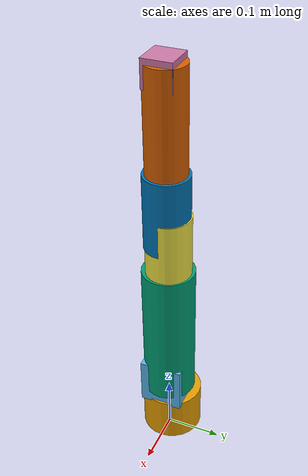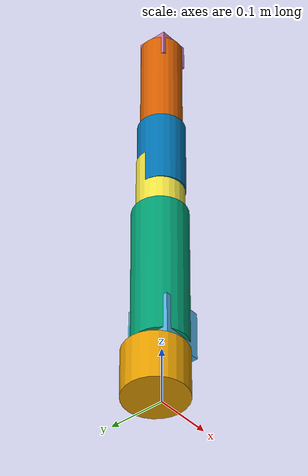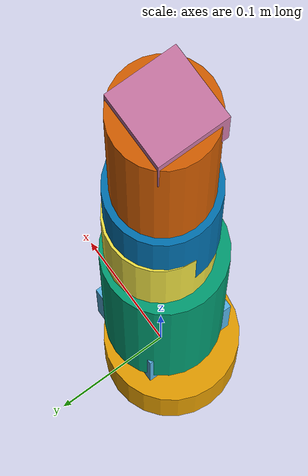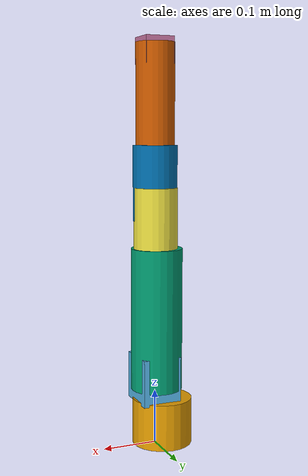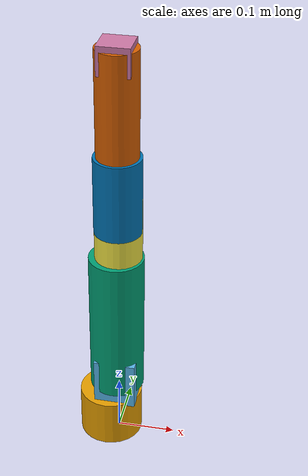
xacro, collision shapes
<?xml version="1.0"?>
<robot name="Nero Component $(arg type)" xmlns:xacro="http://www.ros.org/wiki/xacro">
  <xacro:arg name="type" default="ee"/>
  <xacro:arg name="name" default=""/>
  <xacro:arg name="collider" default="simple"/>

  <xacro:if value="${'$(arg type)' == 'ee'}">
    <xacro:include filename="$(find nero_description)/xacro/Nero.xacro"/>
    <xacro:Nero name="$(arg name)" collider="$(arg collider)"/>
  </xacro:if>
</robot>

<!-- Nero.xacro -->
<robot xmlns:xacro="http://www.ros.org/wiki/xacro">
    <xacro:property name="PI" value="3.1415926535897931"/>

    <xacro:macro name="nero_collision" params="collider mesh xyz:='0 0 0' rpy:='0 0 0' primitive:='box' radius:='0' length:='0' size:='0 0 0'">
        <xacro:if value="${collider == 'simple'}">
            <collision>
                <origin xyz="${xyz}" rpy="${rpy}"/>
                <geometry>
                    <xacro:if value="${primitive == 'cylinder'}">
                        <cylinder radius="${radius}" length="${length}"/>
                    </xacro:if>
                    <xacro:if value="${primitive == 'box'}">
                        <box size="${size}"/>
                    </xacro:if>
                </geometry>
            </collision>
        </xacro:if>
        <xacro:if value="${collider == 'convex'}">
            <collision>
                <geometry>
                    <mesh filename="${mesh}"/>
                </geometry>
            </collision>
        </xacro:if>
    </xacro:macro>

    <xacro:macro name="Nero" params="name collider:='simple'">
        <xacro:property name="prefix" value="${name + '_' if name else ''}"/>

        <link name="${prefix}base_link">
            <inertial>
                <origin xyz="-0.00319465997 -0.00005467608 0.04321758463"/>
                <mass value="1.06458435"/>
                <inertia ixx="0.00102659855152" ixy="0.00000186219753" ixz="-0.00000295298037" iyy="0.00114399299508"
                         iyz="-0.00000078763492" izz="0.00090872933022"/>
            </inertial>
            <visual>
                <geometry>
                    <mesh filename="file://$(find nero_description)/meshes/base_link.glb"/>
                </geometry>
            </visual>
            <xacro:nero_collision
                    collider="${collider}"
                    mesh="file://$(find nero_description)/meshes/base_link.glb"
                    primitive="cylinder" xyz="-0.0145 0 0.043" radius="0.055" length="0.086"/>
        </link>
        <link name="${prefix}link1">
            <inertial>
                <origin xyz="-0.00076810578 -0.00005718031 -0.00686372765"/>
                <mass value="0.76710504"/>
                <inertia ixx="0.00066689512233" ixy="0.00000273938306" ixz="0.00001463284987" iyy="0.00054501235592"
                         iyz="0.00000183168344" izz="0.00051509465737"/>
            </inertial>
            <visual>
                <geometry>
                    <mesh filename="file://$(find nero_description)/meshes/link1.glb"/>
                </geometry>
            </visual>
            <xacro:nero_collision
                    collider="${collider}"
                    mesh="file://$(find nero_description)/meshes/link1.glb"
                    primitive="box" xyz="0 -0.002 -0.0135" size="0.072 0.0775 0.087"/>
        </link>
        <joint name="${prefix}joint1" type="revolute">
            <origin xyz="0 0 0.138"/>
            <parent link="${prefix}base_link"/>
            <child link="${prefix}link1"/>
            <axis xyz="0 0 1"/>
            <limit lower="-2.70526" upper="2.70526" effort="100" velocity="5"/>
        </joint>
        <link name="${prefix}link2">
            <inertial>
                <origin xyz="0.00079686657 -0.07890325930 0.00111849422"/>
                <mass value="0.69381908"/>
                <inertia ixx="0.00201093857656" ixy="-0.00002399426785" ixz="-0.00000072824714" iyy="0.00063544232555"
                         iyz="0.00005831284343" izz="0.00181943989593"/>
            </inertial>
            <visual>
                <geometry>
                    <mesh filename="file://$(find nero_description)/meshes/link2.glb"/>
                </geometry>
            </visual>
            <xacro:nero_collision
                    collider="${collider}"
                    mesh="file://$(find nero_description)/meshes/link2.glb"
                    primitive="cylinder" xyz="0.0033 -0.0977 0" rpy="${PI/2} 0 0" radius="0.047" length="0.262"/>
        </link>
        <joint name="${prefix}joint2" type="revolute">
            <origin  rpy="1.5707963  3.1415926 0"/>
            <parent link="${prefix}link1"/>
            <child link="${prefix}link2"/>
            <axis xyz="0 0 1"/>
            <limit lower="-1.74" upper="1.74" effort="100" velocity="5"/>
        </joint>
        <link name="${prefix}link3">
            <inertial>
                <origin xyz="0.00014513363 -0.00121378766 -0.04861136795"/>
                <mass value="0.67246544"/>
                <inertia ixx="0.00343229961910" ixy="-0.00000026976739" ixz="0.00000305078107" iyy="0.00338662526897"
                         iyz="-0.00003550220027" izz="0.00028853579710"/>
            </inertial>
            <visual>
                <geometry>
                    <mesh filename="file://$(find nero_description)/meshes/link3.glb"/>
                </geometry>
            </visual>
            <xacro:nero_collision
                    collider="${collider}"
                    mesh="file://$(find nero_description)/meshes/link3.glb"
                    primitive="cylinder" xyz="0 0.002 -0.089" radius="0.040" length="0.235"/>
        </link>
        <joint name="${prefix}joint3" type="revolute">
            <origin xyz="0 -0.31 0" rpy="-1.5707963  0 3.1415926926"/>
            <parent link="${prefix}link2"/>
            <child link="${prefix}link3"/>
            <axis xyz="0 0 1"/>
            <limit lower="-2.75" upper="2.75" effort="100" velocity="5"/>
        </joint>
        <link name="${prefix}link4">
            <inertial>
                <origin xyz="-0.00031334623 -0.05675192422 0.00076056133"/>
                <mass value="0.48451414"/>
                <inertia ixx="0.00050386693505" ixy="-0.00000529675237" ixz="0.00000006134740" iyy="0.00023502068202"
                         iyz="0.00001815932566" izz="0.00040149523118"/>
            </inertial>
            <visual>
                <geometry>
                    <mesh filename="file://$(find nero_description)/meshes/link4.glb"/>
                </geometry>
            </visual>
            <xacro:nero_collision
                    collider="${collider}"
                    mesh="file://$(find nero_description)/meshes/link4.glb"
                    primitive="cylinder" xyz="0 -0.0365 0" rpy="${PI/2} 0 0" radius="0.040" length="0.135"/>
        </link>
        <joint name="${prefix}joint4" type="revolute">
            <origin  rpy="-1.5707963  0 3.1415926926"/>
            <parent link="${prefix}link3"/>
            <child link="${prefix}link4"/>
            <axis xyz="0 0 1"/>
            <limit lower="-1.01" upper="2.14" effort="100" velocity="5"/>
        </joint>
        <link name="${prefix}link5">
            <inertial>
                <origin xyz="0.00265591357 0.00201195753 -0.11620855434"/>
                <mass value="0.58368405"/>
                <inertia ixx="0.00089537686723" ixy="0.00000648218232" ixz="-0.00001463346849" iyy="0.00085866122972"
                         iyz="-0.00004035185637" izz="0.00021774946532"/>
            </inertial>
            <visual>
                <geometry>
                    <mesh filename="file://$(find nero_description)/meshes/link5.glb"/>
                </geometry>
            </visual>
            <xacro:nero_collision
                    collider="${collider}"
                    mesh="file://$(find nero_description)/meshes/link5.glb"
                    primitive="cylinder" xyz="0 0 -0.082" radius="0.035" length="0.189"/>
        </link>
        <joint name="${prefix}joint5" type="revolute">
            <origin xyz="0 -0.27001 0" rpy="1.5707963  -1.5707963  0"/>
            <parent link="${prefix}link4"/>
            <child link="${prefix}link5"/>
            <axis xyz="0 0 1"/>
            <limit lower="-2.75" upper="2.75" effort="100" velocity="5"/>
        </joint>
        <link name="${prefix}link6">
            <inertial>
                <origin xyz="0.00009501505 0.00107831174 -0.00019110990"/>
                <mass value="0.3140406"/>
                <inertia ixx="0.00006027211661" ixy="-0.00000024650903" ixz="0.00000015701294" iyy="0.00004699514792"
                         iyz="0.00000004170875" izz="0.00005756771792"/>
            </inertial>
            <visual>
                <geometry>
                    <mesh filename="file://$(find nero_description)/meshes/link6.glb"/>
                </geometry>
            </visual>
            <xacro:nero_collision
                    collider="${collider}"
                    mesh="file://$(find nero_description)/meshes/link6.glb"
                    primitive="box" xyz="-0.0012 -0.0021 0" size="0.047 0.051 0.053"/>
        </link>
        <joint name="${prefix}joint6" type="revolute">
            <origin  rpy="1.5707963  -1.5707963  0"/>
            <parent link="${prefix}link5"/>
            <child link="${prefix}link6"/>
            <axis xyz="0 0 1"/>
            <limit lower="-0.73" upper="0.95" effort="100" velocity="5"/>
        </joint>
        <link name="${prefix}link7">
            <inertial>
                <origin xyz="-0.00014000 -0.00010000 -0.00275000"/>
                <mass value="0.000001"/>
                <inertia ixx="1.1000000000000001e-07" ixy="0" ixz="0" iyy="1.1000000000000001e-07" iyz="0"
                         izz="1.9999999999999999e-07"/>
            </inertial>
            <visual>
                <geometry>
                    <mesh filename="file://$(find nero_description)/meshes/link7.glb"/>
                </geometry>
            </visual>
            <xacro:nero_collision
                    collider="${collider}"
                    mesh="file://$(find nero_description)/meshes/link7.glb"
                    primitive="box" xyz="0 0 -0.0047" size="0.027 0.027 0.010"/>
        </link>
        <joint name="${prefix}joint7" type="revolute">
            <origin xyz="0 -0.0235 0" rpy="1.5707963 0 0"/>
            <parent link="${prefix}link6"/>
            <child link="${prefix}link7"/>
            <axis xyz="0 0 1"/>
            <limit lower="-1.5707963" upper="1.5707963" effort="100" velocity="5"/>
        </joint>

        <link name="${prefix}tcp"/>
        <joint name="${prefix}tcp_joint" type="fixed">
            <parent link="${prefix}link7"/>
            <child link="${prefix}tcp"/>
        </joint>
    </xacro:macro>
</robot>
